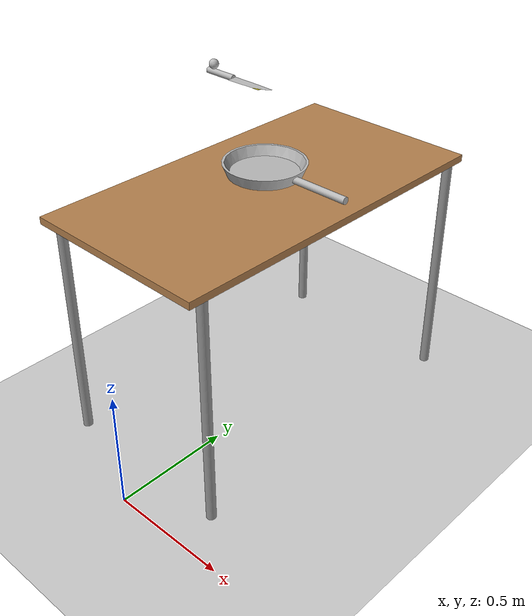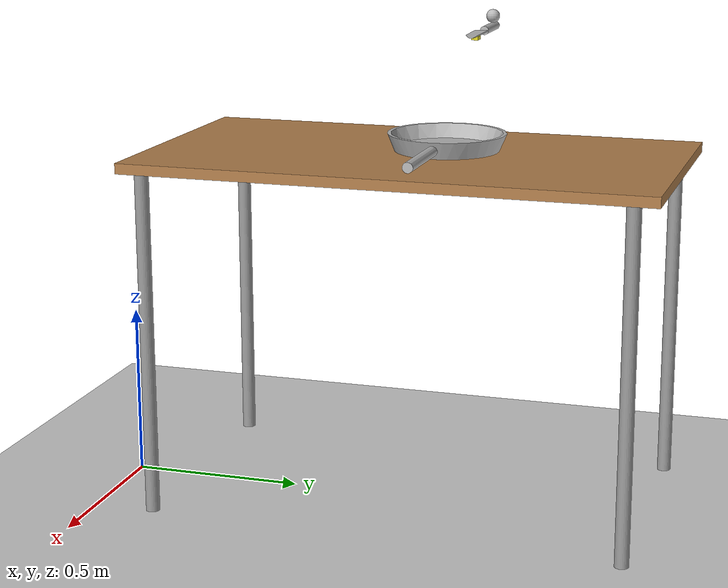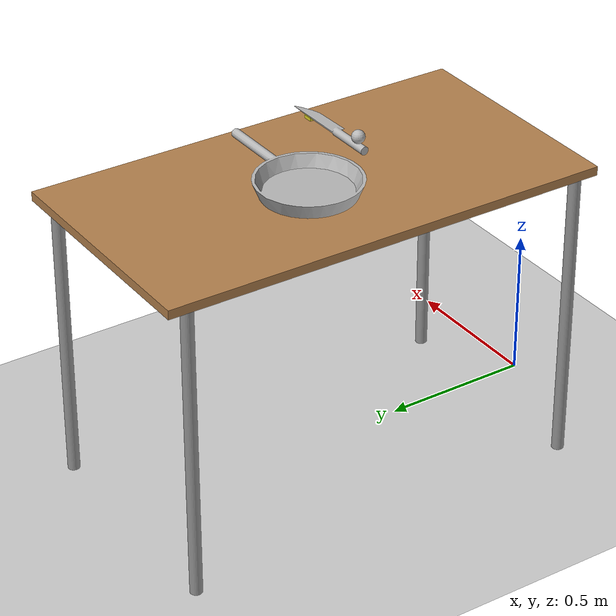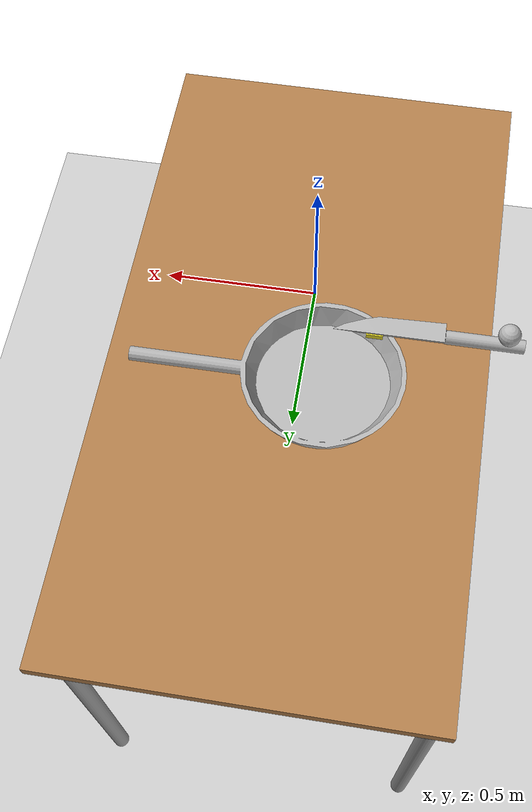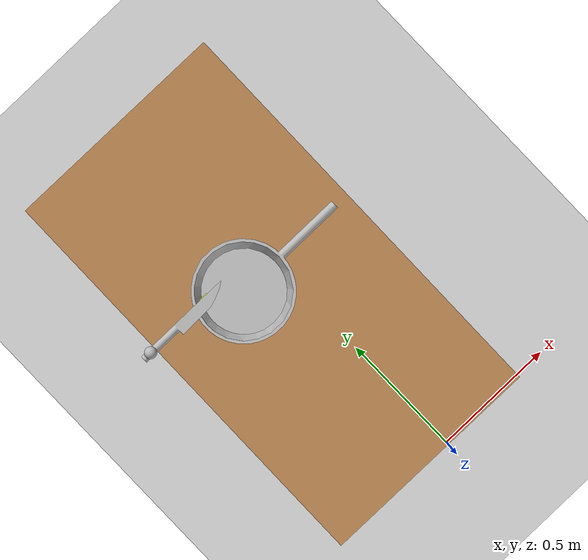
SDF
<sdf version="1.6">
    <world name="scraping">

        <physics type="ode">
            <max_step_size>0.001</max_step_size>
            <real_time_factor>1</real_time_factor>
            <real_time_update_rate>1000</real_time_update_rate>
            <bullet>
                <solver>
                    <iters>70</iters>
                </solver>
            </bullet>
            <ode>
                <solver>
                    <iters>70</iters>
                </solver>
            </ode>
        </physics>

        <include>
            <uri>model://sun</uri>
        </include>

        <include>
            <uri>model://ground_plane</uri>
        </include>

        <include>
            <uri>model://table</uri>
            <pose>-0.071633 0.854817 0 0 0 -1.57694</pose>
            <static>true</static>
        </include>

        <include>
            <uri>model://simple_knife</uri>
            <pose>-0.351127 0.976666 1.331360 1.57694 0 3.14159</pose>
        </include>

        <include>
            <uri>model://gripper</uri>
            <pose>-0.459675 0.976666 1.362517 0 0 0</pose>

            <plugin name="grip" filename="libGripPlugin.so">
              <parentLinkName>link</parentLinkName>
              <childLinkName>simple_knife::link</childLinkName>
            </plugin>

            <plugin name="force_controller" filename="libforce_controller_plugin.so">
              <linkName>link</linkName>
              <topicName>set_gripper_twist</topicName>
              <P>4.0</P>
              <I>0.0</I>
              <D>0.0</D>
            </plugin>
        </include>

        <include>
            <uri>model://simple_frying_pan</uri>
            <pose>-0.131927 0.924515 1.015023 0 0 0</pose>
             <static>false</static>
        </include>

        <include>
            <uri>model://butter_box</uri>
            <pose>-0.226387 0.981918 1.325094 0 0 0</pose>
            <plugin name="stick" filename="libStickPlugin.so">
              <parentLinkName>link</parentLinkName>
              <childLinkName>simple_knife::link</childLinkName>
              <force>5</force>
            </plugin>
        </include>

        <gui>
            <camera name='user_camera'>
                <pose>0.892691 1.54384 1.57989 -1.4918e-17 0.375643 -2.675</pose>
                <view_controller>orbit</view_controller>
            </camera>
        </gui>

    </world>
</sdf>

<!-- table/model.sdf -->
<sdf version="1.5">
  <model name="table">
    <static>true</static>
    <link name="link">
      <collision name="surface">
        <pose>0 0 1.0 0 0 0</pose>
        <geometry>
          <box>
            <size>1.5 0.8 0.03</size>
          </box>
        </geometry>
        <surface>
          <friction>
            <ode>
              <mu>0.6</mu>
              <mu2>0.6</mu2>
            </ode>
          </friction>
        </surface>
      </collision>
      <visual name="visual1">
        <pose>0 0 1.0 0 0 0</pose>
        <geometry>
          <box>
            <size>1.5 0.8 0.03</size>
          </box>
        </geometry>
        <material>
          <script>
            <uri>model://media/materials/scripts/gazebo.material</uri>
            <name>Gazebo/Wood</name>
          </script>
        </material>
      </visual>
      <collision name="front_left_leg">
        <pose>0.68 0.38 0.5 0 0 0</pose>
        <geometry>
          <cylinder>
            <radius>0.02</radius>
            <length>1.0</length>
          </cylinder>
        </geometry>
      </collision>
      <visual name="front_left_leg">
        <pose>0.68 0.38 0.5 0 0 0</pose>
        <geometry>
          <cylinder>
            <radius>0.02</radius>
            <length>1.0</length>
          </cylinder>
        </geometry>
        <material>
          <script>
            <uri>model://media/materials/scripts/gazebo.material</uri>
            <name>Gazebo/Grey</name>
          </script>
        </material>
      </visual>
      <collision name="front_right_leg">
        <pose>0.68 -0.38 0.5 0 0 0</pose>
        <geometry>
          <cylinder>
            <radius>0.02</radius>
            <length>1.0</length>
          </cylinder>
        </geometry>
      </collision>
      <visual name="front_right_leg">
        <pose>0.68 -0.38 0.5 0 0 0</pose>
        <geometry>
          <cylinder>
            <radius>0.02</radius>
            <length>1.0</length>
          </cylinder>
        </geometry>
        <material>
          <script>
            <uri>model://media/materials/scripts/gazebo.material</uri>
            <name>Gazebo/Grey</name>
          </script>
        </material>
      </visual>
      <collision name="back_right_leg">
        <pose>-0.68 -0.38 0.5 0 0 0</pose>
        <geometry>
          <cylinder>
            <radius>0.02</radius>
            <length>1.0</length>
          </cylinder>
        </geometry>
      </collision>
      <visual name="back_right_leg">
        <pose>-0.68 -0.38 0.5 0 0 0</pose>
        <geometry>
          <cylinder>
            <radius>0.02</radius>
            <length>1.0</length>
          </cylinder>
        </geometry>
        <material>
          <script>
            <uri>model://media/materials/scripts/gazebo.material</uri>
            <name>Gazebo/Grey</name>
          </script>
        </material>
      </visual>
      <collision name="back_left_leg">
        <pose>-0.68 0.38 0.5 0 0 0</pose>
        <geometry>
          <cylinder>
            <radius>0.02</radius>
            <length>1.0</length>
          </cylinder>
        </geometry>
      </collision>
      <visual name="back_left_leg">
        <pose>-0.68 0.38 0.5 0 0 0</pose>
        <geometry>
          <cylinder>
            <radius>0.02</radius>
            <length>1.0</length>
          </cylinder>
        </geometry>
        <material>
          <script>
            <uri>model://media/materials/scripts/gazebo.material</uri>
            <name>Gazebo/Grey</name>
          </script>
        </material>
      </visual>
    </link>
  </model>
</sdf>

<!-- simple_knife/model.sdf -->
<sdf version='1.6'>
    <model name='simple_knife'>
        <pose>0 0 0 0 0 0</pose>
        <link name='link'>
            <pose>0 0 0 0 0 0</pose>

            <inertial>
                <mass>1</mass>
                <pose>0.046265 0.0 -0.000161 0 0 0</pose>
                <inertia>
                    <ixx>0.0000518</ixx>
                    <iyy>0.00305847</iyy>
                    <izz>0.00304899</izz>
                    <ixy>0.0</ixy>
                    <ixz>-0.00000607</ixz>
                    <iyz>0.0</iyz>
                </inertia>
            </inertial>

            <sensor name="tool_contact_sensor" type="contact">
              <always_on>true</always_on>
              <update_rate>30.0</update_rate>
              <contact>
                <collision>collision</collision>
              </contact>
              <plugin name="tool_bumper" filename="libgazebo_ros_bumper.so">
                <bumperTopicName>tool_contact_sensor_state</bumperTopicName>
                <frameName>world</frameName>
              </plugin>
            </sensor>

            <collision name='collision'>
                <geometry>
                    <mesh>
                        <uri>model://simple_knife/mesh.dae</uri>
                    </mesh>
                </geometry>
                <surface>
                    <friction>
                        <ode>
                          <mu>0.4</mu>
                          <mu2>0.4</mu2>
                        </ode>
                        <bullet>
                            <friction>0.4</friction>
                            <friction2>0.4</friction2>
                        </bullet>
                    </friction>
                </surface>
            </collision>
            <visual name='visual'>
                <geometry>
                    <mesh>
                        <uri>model://simple_knife/mesh.dae</uri>
                    </mesh>
                </geometry>
            </visual>
        </link>
    </model>
</sdf>

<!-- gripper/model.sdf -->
<sdf version='1.6'>
    <model name='gripper'>
        <static>false</static>
        <allow_auto_disable>false</allow_auto_disable>

        <pose>0 0 0 0 0 0</pose>

        <link name='link'>
            <pose>0 0 0 0 0 0</pose>

            <gravity>false</gravity>

            <visual name='visual'>
                <geometry>
                    <sphere>
                        <radius>0.02</radius>
                    </sphere>
                </geometry>
            </visual>

        </link>
    </model>
</sdf>

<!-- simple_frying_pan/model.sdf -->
<sdf version='1.6'>
    <model name='simple_frying_pan'>
        <pose>0 0 0 0 0 0</pose>
        <link name='link'>
            <pose>0 0 0 0 0 0</pose>
            <inertial>
                <mass>1</mass>
                <pose>0.002625 0.0 0.01465 0 0 0</pose>
                <inertia>
                    <ixx>0.007971675</ixx>
                    <iyy>0.008713309</iyy>
                    <izz>0.016311566</izz>
                    <ixy>-1.69694542e-019</ixy>
                    <ixz>-0.000025788</ixz>
                    <iyz>-6.28650663e-021</iyz>
                </inertia>
            </inertial>
            <collision name='collision'>
                <geometry>
                    <mesh>
                        <uri>model://simple_frying_pan/mesh.dae</uri>
                    </mesh>
                </geometry>
                <surface>
                    <friction>
                        <ode>
                          <mu>0.4</mu>
                          <mu2>0.4</mu2>
                        </ode>
                        <bullet>
                            <friction>0.4</friction>
                            <friction2>0.4</friction2>
                        </bullet>
                    </friction>
                </surface>
            </collision>
            <visual name='visual'>
                <geometry>
                    <mesh>
                        <uri>model://simple_frying_pan/mesh.dae</uri>
                    </mesh>
                </geometry>
            </visual>
        </link>
    </model>
</sdf>

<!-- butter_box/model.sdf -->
<sdf version='1.6'>
    <model name='butter_box'>
        <static>false</static>
        <pose>0 0 0 0 0 0</pose>
        <link name='link'>
            <pose>0 0 0 0 0 0</pose>
            <inertial>
                <mass>0.001</mass>
                <pose>0 0 0 0 0 0</pose>
                <inertia>
                    <ixx>0.00000004167</ixx>
                    <iyy>0.00000008333</iyy>
                    <izz>0.00000010833</izz>
                    <ixy>0</ixy>
                    <ixz>0</ixz>
                    <iyz>0</iyz>
                </inertia>
            </inertial>
            <collision name='collision'>
                <geometry>
                    <box>
                        <size>0.03 0.02 0.01</size>
                    </box>
                </geometry>
                <surface>
                    <friction>
                        <ode>
                            <mu>0.2</mu>
                            <mu2>0.2</mu2>
                        </ode>
                    </friction>
                </surface>
            </collision>
            <visual name='visual'>
                <geometry>
                    <box>
                        <size>0.03 0.02 0.01</size>
                    </box>
                </geometry>
                <material>
                    <script>
                        <name>Gazebo/Yellow</name>
                        <uri>file://media/materials/scripts/gazebo.material</uri>
                    </script>
                </material>
            </visual>
        </link>
    </model>
</sdf>
